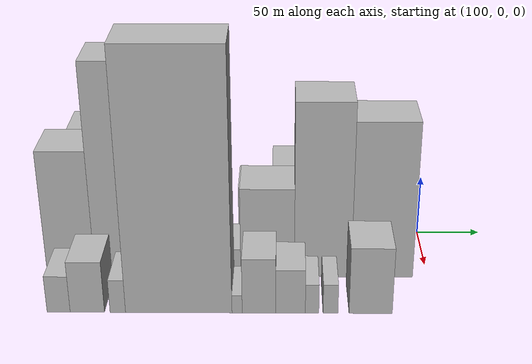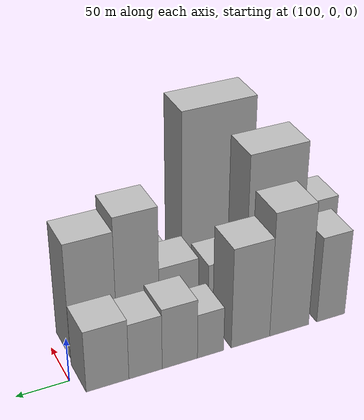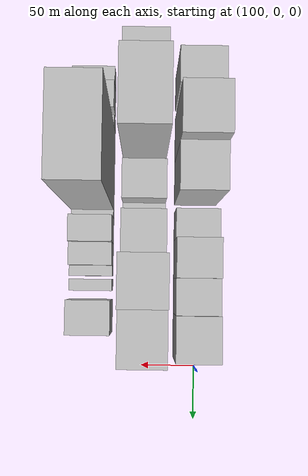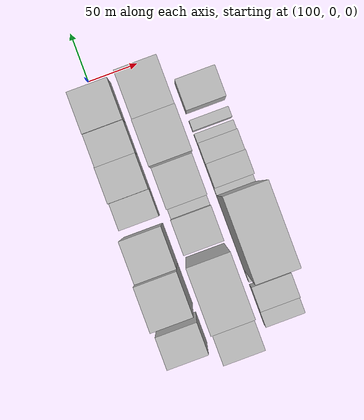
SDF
<sdf version="1.6">
 <world name="default">
  <model name="building_12">
   <static>1</static>
   <pose>100.0000 -261.5331 0 0.000000 0.000000 0.000000</pose>
   <link name="link">
    <pose>0 0 49.50 0 0 0</pose>
    <collision name="collision"><geometry><box><size>40.0000 31.2730 99.0000</size></box></geometry></collision>
    <visual name="visual">
     <cast_shadows>0</cast_shadows>
     <geometry><box><size>40.0000 31.2730 99.0000</size></box></geometry>
     <material>
      <script>
       <uri>model://HANNAS_wall/materials/scripts</uri>
       <uri>model://HANNAS_wall/materials/textures</uri>
       <name>vrc/HANNAS_wall</name>
      </script>
     </material>
    </visual>
   </link>
  </model>
  <model name="building_13">
   <static>1</static>
   <pose>100.0000 -215.6549 0 0.000000 0.000000 0.000000</pose>
   <link name="link">
    <pose>0 0 70.50 0 0 0</pose>
    <collision name="collision"><geometry><box><size>40.0000 42.4833 141.0000</size></box></geometry></collision>
    <visual name="visual">
     <cast_shadows>0</cast_shadows>
     <geometry><box><size>40.0000 42.4833 141.0000</size></box></geometry>
     <material>
      <script>
       <uri>model://HANNAS_wall/materials/scripts</uri>
       <uri>model://HANNAS_wall/materials/textures</uri>
       <name>vrc/HANNAS_wall</name>
      </script>
     </material>
    </visual>
   </link>
  </model>
  <model name="building_14">
   <static>1</static>
   <pose>100.0000 -174.0290 0 0.000000 0.000000 0.000000</pose>
   <link name="link">
    <pose>0 0 57.00 0 0 0</pose>
    <collision name="collision"><geometry><box><size>40.0000 40.7685 114.0000</size></box></geometry></collision>
    <visual name="visual">
     <cast_shadows>0</cast_shadows>
     <geometry><box><size>40.0000 40.7685 114.0000</size></box></geometry>
     <material>
      <script>
       <uri>model://HANNAS_wall/materials/scripts</uri>
       <uri>model://HANNAS_wall/materials/textures</uri>
       <name>vrc/HANNAS_wall</name>
      </script>
     </material>
    </visual>
   </link>
  </model>
  <model name="building_15">
   <static>1</static>
   <pose>100.0000 -132.1360 0 0.000000 0.000000 0.000000</pose>
   <link name="link">
    <pose>0 0 25.50 0 0 0</pose>
    <collision name="collision"><geometry><box><size>40.0000 27.0176 51.0000</size></box></geometry></collision>
    <visual name="visual">
     <cast_shadows>0</cast_shadows>
     <geometry><box><size>40.0000 27.0176 51.0000</size></box></geometry>
     <material>
      <script>
       <uri>model://HANNAS_wall/materials/scripts</uri>
       <uri>model://HANNAS_wall/materials/textures</uri>
       <name>vrc/HANNAS_wall</name>
      </script>
     </material>
    </visual>
   </link>
  </model>
  <model name="building_16">
   <static>1</static>
   <pose>100.0000 -100.8448 0 0.000000 0.000000 0.000000</pose>
   <link name="link">
    <pose>0 0 34.50 0 0 0</pose>
    <collision name="collision"><geometry><box><size>40.0000 35.5646 69.0000</size></box></geometry></collision>
    <visual name="visual">
     <cast_shadows>0</cast_shadows>
     <geometry><box><size>40.0000 35.5646 69.0000</size></box></geometry>
     <material>
      <script>
       <uri>model://HANNAS_wall/materials/scripts</uri>
       <uri>model://HANNAS_wall/materials/textures</uri>
       <name>vrc/HANNAS_wall</name>
      </script>
     </material>
    </visual>
   </link>
  </model>
  <model name="building_17">
   <static>1</static>
   <pose>100.0000 -66.6358 0 0.000000 0.000000 0.000000</pose>
   <link name="link">
    <pose>0 0 31.50 0 0 0</pose>
    <collision name="collision"><geometry><box><size>40.0000 32.8534 63.0000</size></box></geometry></collision>
    <visual name="visual">
     <cast_shadows>0</cast_shadows>
     <geometry><box><size>40.0000 32.8534 63.0000</size></box></geometry>
     <material>
      <script>
       <uri>model://HANNAS_wall/materials/scripts</uri>
       <uri>model://HANNAS_wall/materials/textures</uri>
       <name>vrc/HANNAS_wall</name>
      </script>
     </material>
    </visual>
   </link>
  </model>
  <model name="building_18">
   <static>1</static>
   <pose>100.0000 -29.5664 0 0.000000 0.000000 0.000000</pose>
   <link name="link">
    <pose>0 0 34.50 0 0 0</pose>
    <collision name="collision"><geometry><box><size>40.0000 41.2854 69.0000</size></box></geometry></collision>
    <visual name="visual">
     <cast_shadows>0</cast_shadows>
     <geometry><box><size>40.0000 41.2854 69.0000</size></box></geometry>
     <material>
      <script>
       <uri>model://HANNAS_wall/materials/scripts</uri>
       <uri>model://HANNAS_wall/materials/textures</uri>
       <name>vrc/HANNAS_wall</name>
      </script>
     </material>
    </visual>
   </link>
  </model>
  <model name="building_40">
   <static>1</static>
   <pose>149.0000 -271.9378 0 0.000000 0.000000 0.000000</pose>
   <link name="link">
    <pose>0 0 52.50 0 0 0</pose>
    <collision name="collision"><geometry><box><size>40.0000 36.5248 105.0000</size></box></geometry></collision>
    <visual name="visual">
     <cast_shadows>0</cast_shadows>
     <geometry><box><size>40.0000 36.5248 105.0000</size></box></geometry>
     <material>
      <script>
       <uri>model://HANNAS_wall/materials/scripts</uri>
       <uri>model://HANNAS_wall/materials/textures</uri>
       <name>vrc/HANNAS_wall</name>
      </script>
     </material>
    </visual>
   </link>
  </model>
  <model name="building_41">
   <static>1</static>
   <pose>149.0000 -223.2743 0 0.000000 0.000000 0.000000</pose>
   <link name="link">
    <pose>0 0 87.00 0 0 0</pose>
    <collision name="collision"><geometry><box><size>40.0000 60.8022 174.0000</size></box></geometry></collision>
    <visual name="visual">
     <cast_shadows>0</cast_shadows>
     <geometry><box><size>40.0000 60.8022 174.0000</size></box></geometry>
     <material>
      <script>
       <uri>model://HANNAS_wall/materials/scripts</uri>
       <uri>model://HANNAS_wall/materials/textures</uri>
       <name>vrc/HANNAS_wall</name>
      </script>
     </material>
    </visual>
   </link>
  </model>
  <model name="building_42">
   <static>1</static>
   <pose>149.0000 -170.3373 0 0.000000 0.000000 0.000000</pose>
   <link name="link">
    <pose>0 0 31.50 0 0 0</pose>
    <collision name="collision"><geometry><box><size>40.0000 35.0718 63.0000</size></box></geometry></collision>
    <visual name="visual">
     <cast_shadows>0</cast_shadows>
     <geometry><box><size>40.0000 35.0718 63.0000</size></box></geometry>
     <material>
      <script>
       <uri>model://HANNAS_wall/materials/scripts</uri>
       <uri>model://HANNAS_wall/materials/textures</uri>
       <name>vrc/HANNAS_wall</name>
      </script>
     </material>
    </visual>
   </link>
  </model>
  <model name="building_43">
   <static>1</static>
   <pose>149.0000 -147.5748 0 0.000000 0.000000 0.000000</pose>
   <link name="link">
    <pose>0 0 12.00 0 0 0</pose>
    <collision name="collision"><geometry><box><size>40.0000 10.4531 24.0000</size></box></geometry></collision>
    <visual name="visual">
     <cast_shadows>0</cast_shadows>
     <geometry><box><size>40.0000 10.4531 24.0000</size></box></geometry>
     <material>
      <script>
       <uri>model://HANNAS_wall/materials/scripts</uri>
       <uri>model://HANNAS_wall/materials/textures</uri>
       <name>vrc/HANNAS_wall</name>
      </script>
     </material>
    </visual>
   </link>
  </model>
  <model name="building_44">
   <static>1</static>
   <pose>149.0000 -121.9621 0 0.000000 0.000000 0.000000</pose>
   <link name="link">
    <pose>0 0 37.50 0 0 0</pose>
    <collision name="collision"><geometry><box><size>40.0000 40.7721 75.0000</size></box></geometry></collision>
    <visual name="visual">
     <cast_shadows>0</cast_shadows>
     <geometry><box><size>40.0000 40.7721 75.0000</size></box></geometry>
     <material>
      <script>
       <uri>model://HANNAS_wall/materials/scripts</uri>
       <uri>model://HANNAS_wall/materials/textures</uri>
       <name>vrc/HANNAS_wall</name>
      </script>
     </material>
    </visual>
   </link>
  </model>
  <model name="building_45">
   <static>1</static>
   <pose>149.0000 -79.8908 0 0.000000 0.000000 0.000000</pose>
   <link name="link">
    <pose>0 0 72.00 0 0 0</pose>
    <collision name="collision"><geometry><box><size>40.0000 43.3705 144.0000</size></box></geometry></collision>
    <visual name="visual">
     <cast_shadows>0</cast_shadows>
     <geometry><box><size>40.0000 43.3705 144.0000</size></box></geometry>
     <material>
      <script>
       <uri>model://HANNAS_wall/materials/scripts</uri>
       <uri>model://HANNAS_wall/materials/textures</uri>
       <name>vrc/HANNAS_wall</name>
      </script>
     </material>
    </visual>
   </link>
  </model>
  <model name="building_46">
   <static>1</static>
   <pose>149.0000 -34.8146 0 0.000000 0.000000 0.000000</pose>
   <link name="link">
    <pose>0 0 64.50 0 0 0</pose>
    <collision name="collision"><geometry><box><size>40.0000 46.7821 129.0000</size></box></geometry></collision>
    <visual name="visual">
     <cast_shadows>0</cast_shadows>
     <geometry><box><size>40.0000 46.7821 129.0000</size></box></geometry>
     <material>
      <script>
       <uri>model://HANNAS_wall/materials/scripts</uri>
       <uri>model://HANNAS_wall/materials/textures</uri>
       <name>vrc/HANNAS_wall</name>
      </script>
     </material>
    </visual>
   </link>
  </model>
  <model name="building_71">
   <static>1</static>
   <pose>198.0000 -272.0760 0 0.000000 0.000000 0.000000</pose>
   <link name="link">
    <pose>0 0 15.00 0 0 0</pose>
    <collision name="collision"><geometry><box><size>40.0000 16.6822 30.0000</size></box></geometry></collision>
    <visual name="visual">
     <cast_shadows>0</cast_shadows>
     <geometry><box><size>40.0000 16.6822 30.0000</size></box></geometry>
     <material>
      <script>
       <uri>model://HANNAS_wall/materials/scripts</uri>
       <uri>model://HANNAS_wall/materials/textures</uri>
       <name>vrc/HANNAS_wall</name>
      </script>
     </material>
    </visual>
   </link>
  </model>
  <model name="building_72">
   <static>1</static>
   <pose>198.0000 -251.3331 0 0.000000 0.000000 0.000000</pose>
   <link name="link">
    <pose>0 0 21.00 0 0 0</pose>
    <collision name="collision"><geometry><box><size>40.0000 24.8036 42.0000</size></box></geometry></collision>
    <visual name="visual">
     <cast_shadows>0</cast_shadows>
     <geometry><box><size>40.0000 24.8036 42.0000</size></box></geometry>
     <material>
      <script>
       <uri>model://HANNAS_wall/materials/scripts</uri>
       <uri>model://HANNAS_wall/materials/textures</uri>
       <name>vrc/HANNAS_wall</name>
      </script>
     </material>
    </visual>
   </link>
  </model>
  <model name="building_73">
   <static>1</static>
   <pose>198.0000 -229.3434 0 0.000000 0.000000 0.000000</pose>
   <link name="link">
    <pose>0 0 13.50 0 0 0</pose>
    <collision name="collision"><geometry><box><size>40.0000 11.1757 27.0000</size></box></geometry></collision>
    <visual name="visual">
     <cast_shadows>0</cast_shadows>
     <geometry><box><size>40.0000 11.1757 27.0000</size></box></geometry>
     <material>
      <script>
       <uri>model://HANNAS_wall/materials/scripts</uri>
       <uri>model://HANNAS_wall/materials/textures</uri>
       <name>vrc/HANNAS_wall</name>
      </script>
     </material>
    </visual>
   </link>
  </model>
  <model name="building_74">
   <static>1</static>
   <pose>198.0000 -185.3201 0 0.000000 0.000000 0.000000</pose>
   <link name="link">
    <pose>0 0 102.00 0 0 0</pose>
    <collision name="collision"><geometry><box><size>40.0000 76.8711 204.0000</size></box></geometry></collision>
    <visual name="visual">
     <cast_shadows>0</cast_shadows>
     <geometry><box><size>40.0000 76.8711 204.0000</size></box></geometry>
     <material>
      <script>
       <uri>model://HANNAS_wall/materials/scripts</uri>
       <uri>model://HANNAS_wall/materials/textures</uri>
       <name>vrc/HANNAS_wall</name>
      </script>
     </material>
    </visual>
   </link>
  </model>
  <model name="building_75">
   <static>1</static>
   <pose>198.0000 -143.2067 0 0.000000 0.000000 0.000000</pose>
   <link name="link">
    <pose>0 0 7.50 0 0 0</pose>
    <collision name="collision"><geometry><box><size>40.0000 7.3557 15.0000</size></box></geometry></collision>
    <visual name="visual">
     <cast_shadows>0</cast_shadows>
     <geometry><box><size>40.0000 7.3557 15.0000</size></box></geometry>
     <material>
      <script>
       <uri>model://HANNAS_wall/materials/scripts</uri>
       <uri>model://HANNAS_wall/materials/textures</uri>
       <name>vrc/HANNAS_wall</name>
      </script>
     </material>
    </visual>
   </link>
  </model>
  <model name="building_76">
   <static>1</static>
   <pose>198.0000 -127.3679 0 0.000000 0.000000 0.000000</pose>
   <link name="link">
    <pose>0 0 22.50 0 0 0</pose>
    <collision name="collision"><geometry><box><size>40.0000 24.3219 45.0000</size></box></geometry></collision>
    <visual name="visual">
     <cast_shadows>0</cast_shadows>
     <geometry><box><size>40.0000 24.3219 45.0000</size></box></geometry>
     <material>
      <script>
       <uri>model://HANNAS_wall/materials/scripts</uri>
       <uri>model://HANNAS_wall/materials/textures</uri>
       <name>vrc/HANNAS_wall</name>
      </script>
     </material>
    </visual>
   </link>
  </model>
  <model name="building_77">
   <static>1</static>
   <pose>198.0000 -104.6238 0 0.000000 0.000000 0.000000</pose>
   <link name="link">
    <pose>0 0 18.00 0 0 0</pose>
    <collision name="collision"><geometry><box><size>40.0000 21.1663 36.0000</size></box></geometry></collision>
    <visual name="visual">
     <cast_shadows>0</cast_shadows>
     <geometry><box><size>40.0000 21.1663 36.0000</size></box></geometry>
     <material>
      <script>
       <uri>model://HANNAS_wall/materials/scripts</uri>
       <uri>model://HANNAS_wall/materials/textures</uri>
       <name>vrc/HANNAS_wall</name>
      </script>
     </material>
    </visual>
   </link>
  </model>
  <model name="building_78">
   <static>1</static>
   <pose>198.0000 -89.1447 0 0.000000 0.000000 0.000000</pose>
   <link name="link">
    <pose>0 0 12.00 0 0 0</pose>
    <collision name="collision"><geometry><box><size>40.0000 9.7917 24.0000</size></box></geometry></collision>
    <visual name="visual">
     <cast_shadows>0</cast_shadows>
     <geometry><box><size>40.0000 9.7917 24.0000</size></box></geometry>
     <material>
      <script>
       <uri>model://HANNAS_wall/materials/scripts</uri>
       <uri>model://HANNAS_wall/materials/textures</uri>
       <name>vrc/HANNAS_wall</name>
      </script>
     </material>
    </visual>
   </link>
  </model>
  <model name="building_79">
   <static>1</static>
   <pose>198.0000 -75.8667 0 0.000000 0.000000 0.000000</pose>
   <link name="link">
    <pose>0 0 12.00 0 0 0</pose>
    <collision name="collision"><geometry><box><size>40.0000 10.7644 24.0000</size></box></geometry></collision>
    <visual name="visual">
     <cast_shadows>0</cast_shadows>
     <geometry><box><size>40.0000 10.7644 24.0000</size></box></geometry>
     <material>
      <script>
       <uri>model://HANNAS_wall/materials/scripts</uri>
       <uri>model://HANNAS_wall/materials/textures</uri>
       <name>vrc/HANNAS_wall</name>
      </script>
     </material>
    </visual>
   </link>
  </model>
  <model name="building_80">
   <static>1</static>
   <pose>198.0000 -46.9255 0 0.000000 0.000000 0.000000</pose>
   <link name="link">
    <pose>0 0 27.00 0 0 0</pose>
    <collision name="collision"><geometry><box><size>40.0000 31.1180 54.0000</size></box></geometry></collision>
    <visual name="visual">
     <cast_shadows>0</cast_shadows>
     <geometry><box><size>40.0000 31.1180 54.0000</size></box></geometry>
     <material>
      <script>
       <uri>model://HANNAS_wall/materials/scripts</uri>
       <uri>model://HANNAS_wall/materials/textures</uri>
       <name>vrc/HANNAS_wall</name>
      </script>
     </material>
    </visual>
   </link>
  </model>
 </world>
</sdf>
